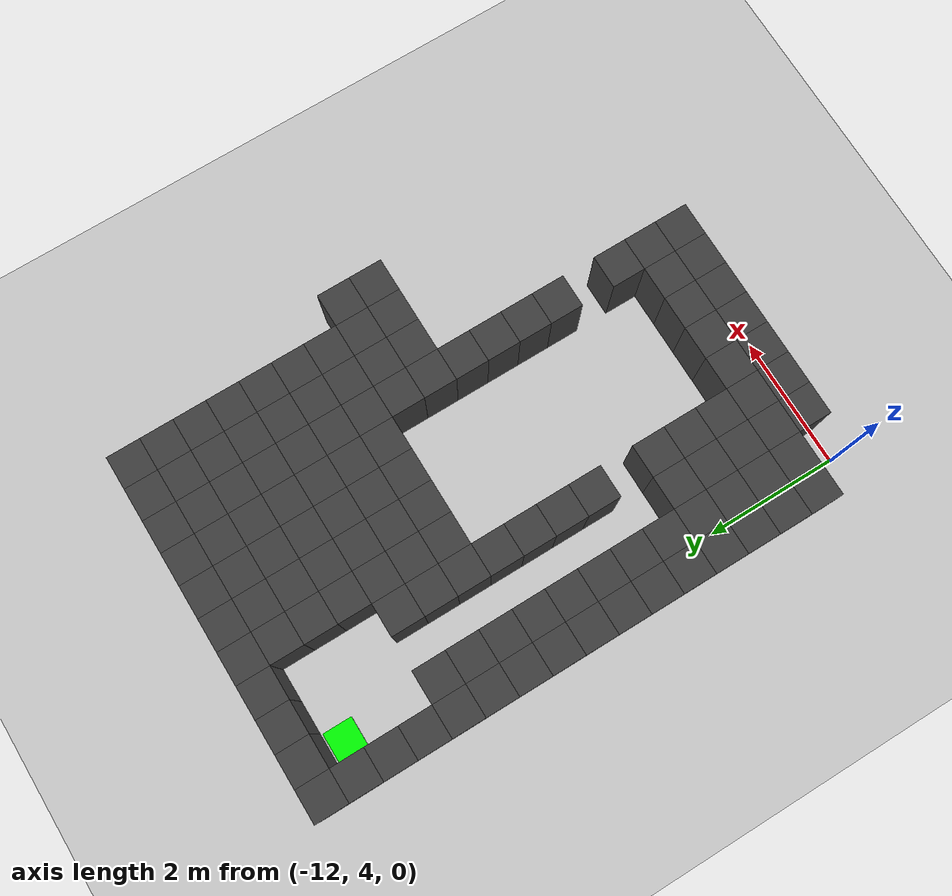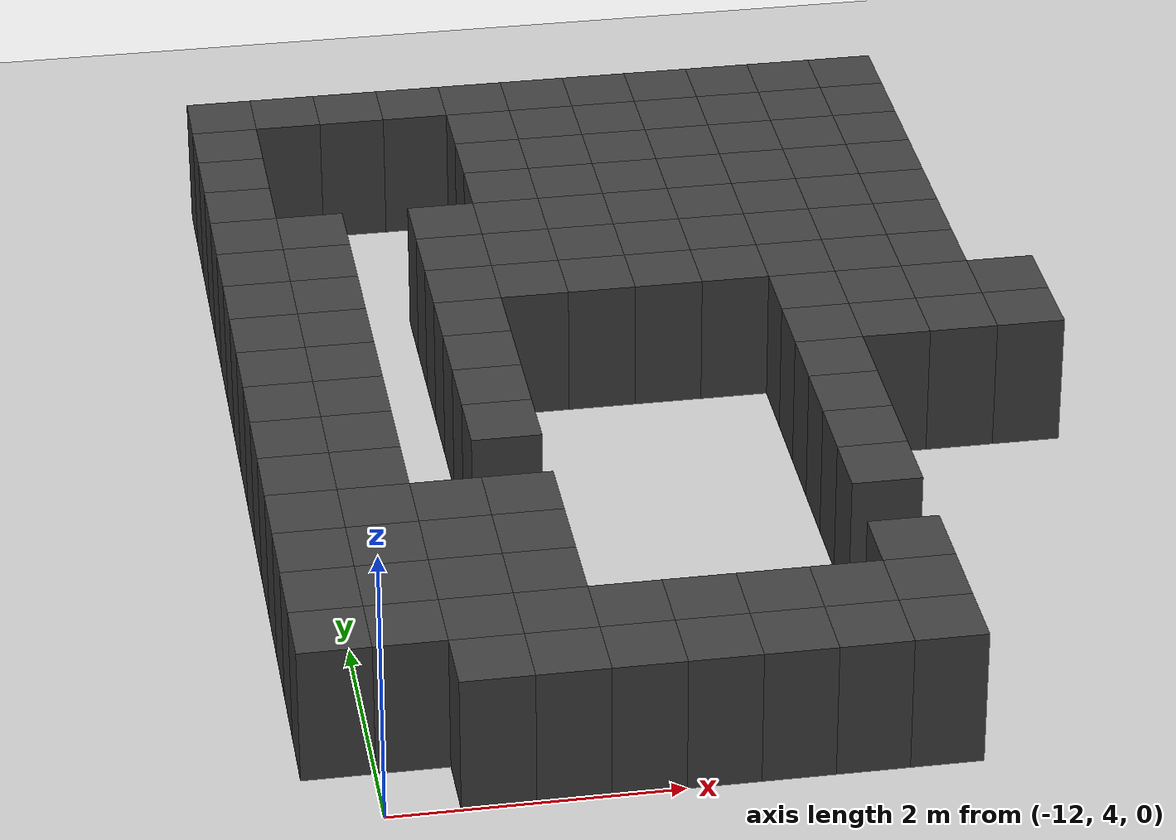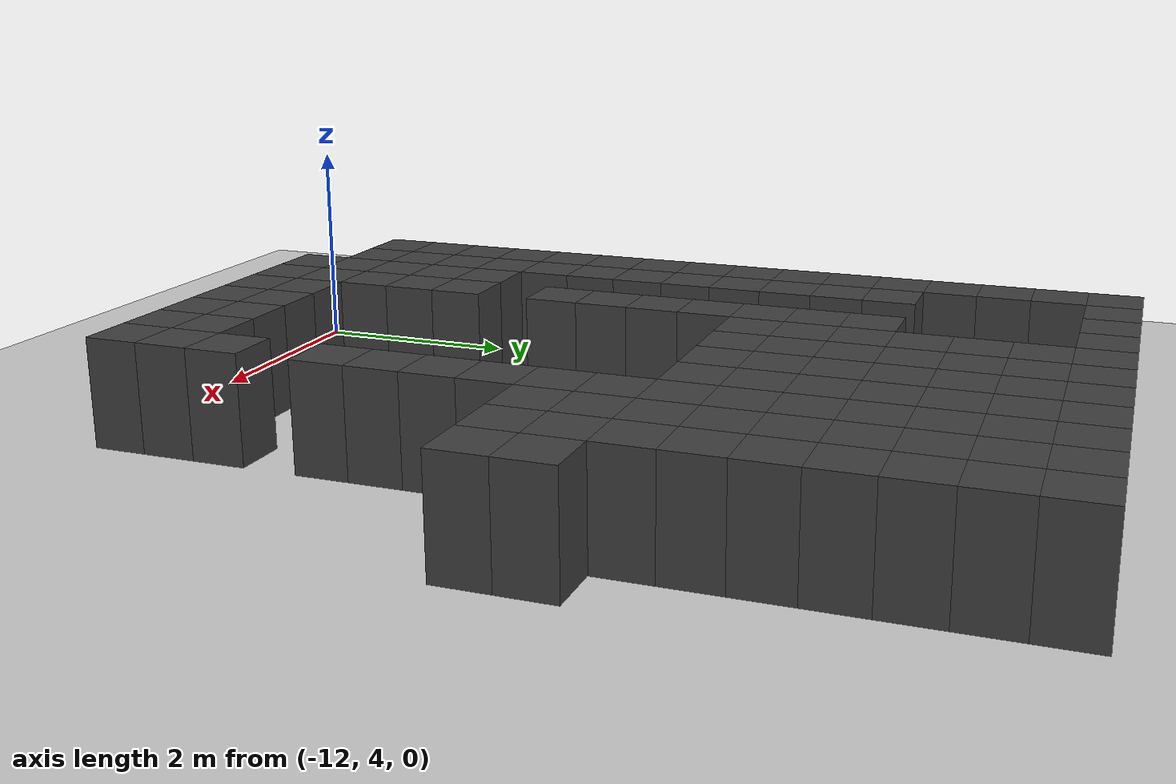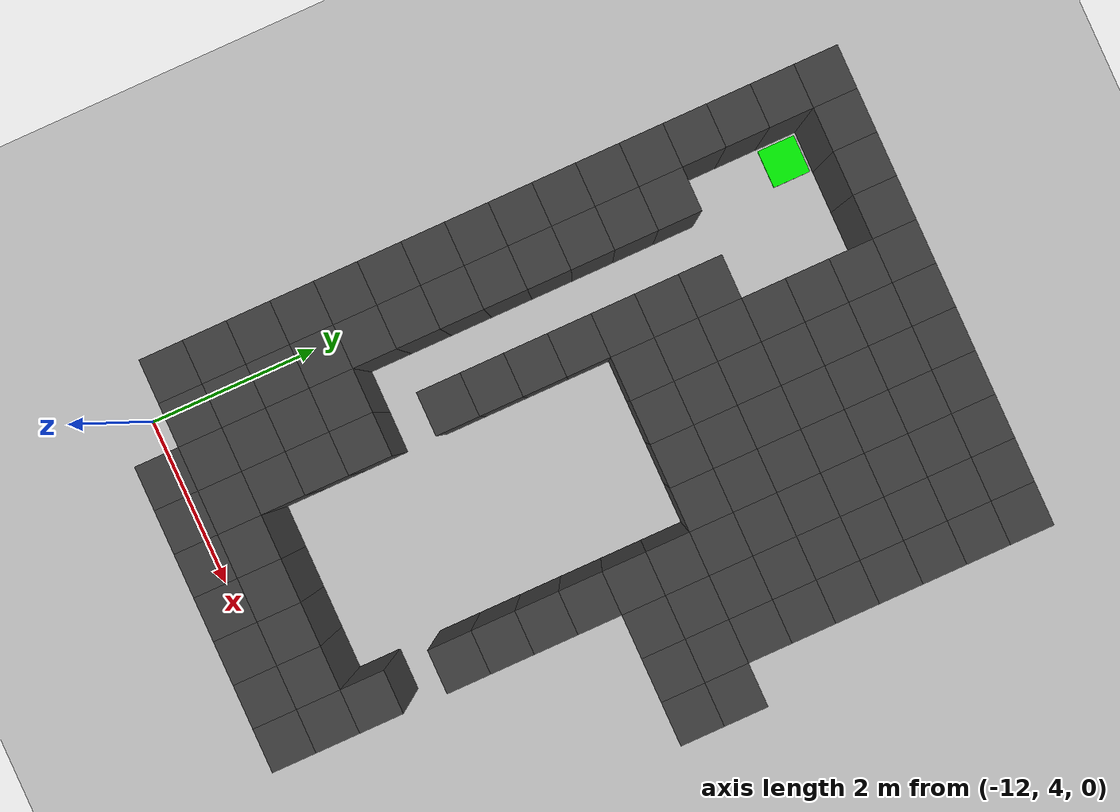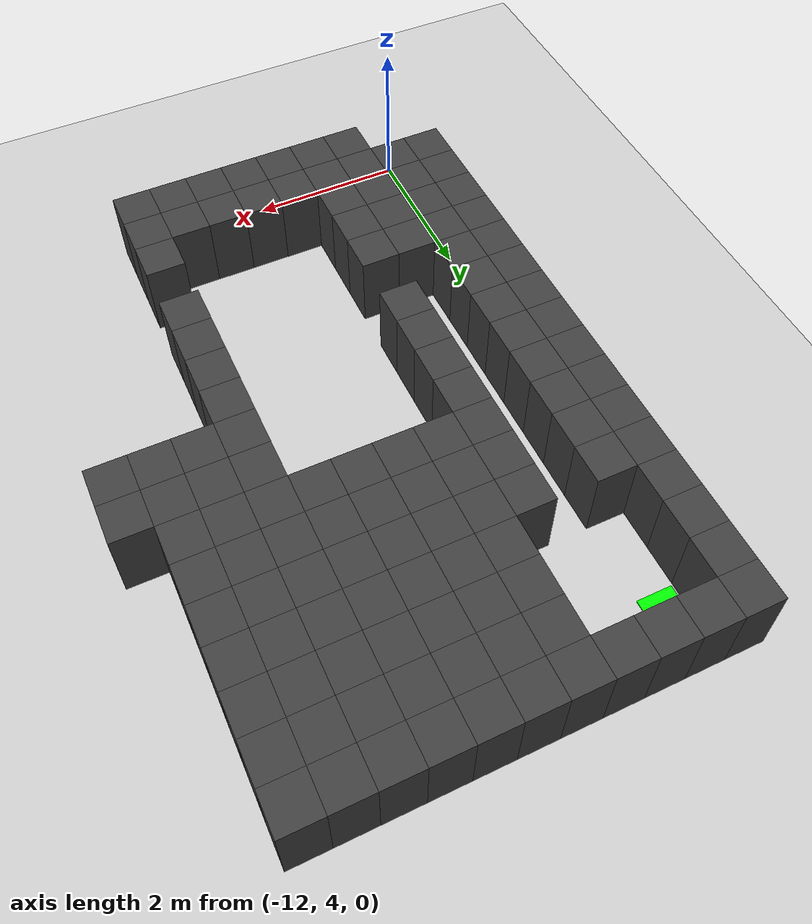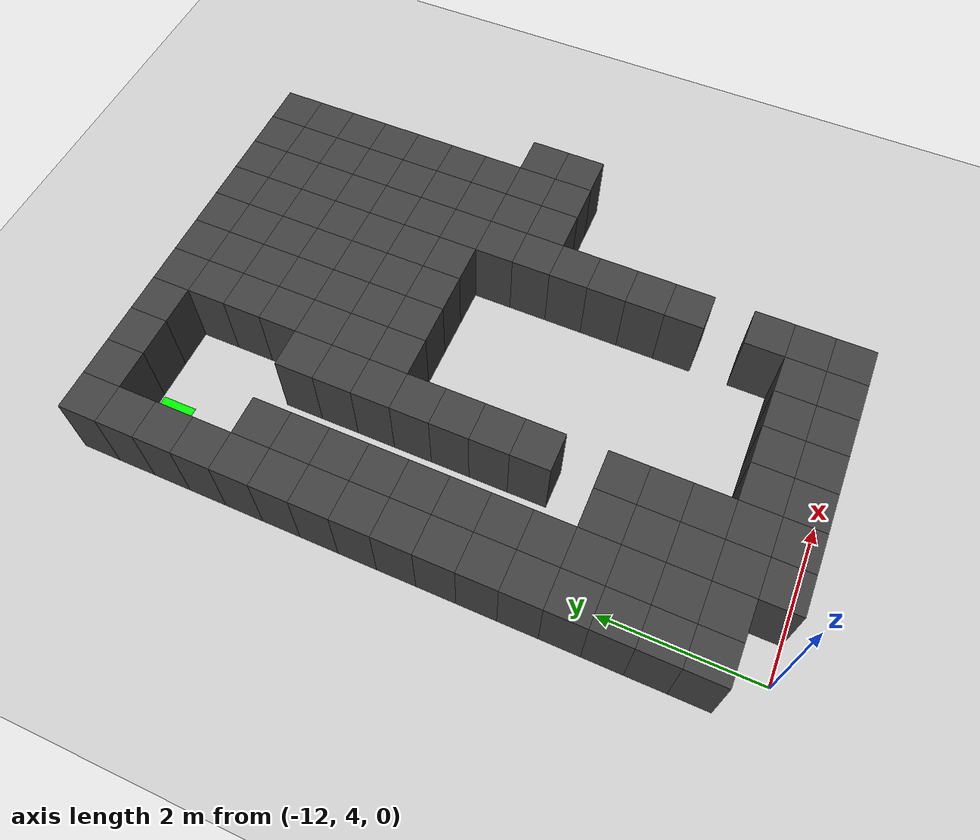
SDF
<sdf version="1.7">
 <world name="map_14706">
  <model name="ground_plane">
   <static>true</static>
   <link name="link">
    <collision name="collision">
     <geometry><plane><normal>0 0 1</normal><size>200 200</size></plane></geometry>
    </collision>
    <visual name="visual">
     <geometry><plane><normal>0 0 1</normal><size>200 200</size></plane></geometry>
     <material><ambient>0.8 0.8 0.8 1</ambient><diffuse>0.8 0.8 0.8 1</diffuse></material>
    </visual>
   </link>
  </model>
  <model name="maze_environment">
   <static>true</static>
   <link name="wall_0">
    <pose>-12.250 12.250 0.500 0 0 0</pose>
    <collision name="col"><geometry><box><size>0.5 0.5 1.0</size></box></geometry></collision>
    <visual name="vis">
     <geometry><box><size>0.5 0.5 1.0</size></box></geometry>
     <material><ambient>0.15 0.15 0.15 1</ambient><diffuse>0.25 0.25 0.25 1</diffuse></material>
    </visual>
   </link>
   <link name="wall_1">
    <pose>-11.750 12.250 0.500 0 0 0</pose>
    <collision name="col"><geometry><box><size>0.5 0.5 1.0</size></box></geometry></collision>
    <visual name="vis">
     <geometry><box><size>0.5 0.5 1.0</size></box></geometry>
     <material><ambient>0.15 0.15 0.15 1</ambient><diffuse>0.25 0.25 0.25 1</diffuse></material>
    </visual>
   </link>
   <link name="wall_2">
    <pose>-11.250 12.250 0.500 0 0 0</pose>
    <collision name="col"><geometry><box><size>0.5 0.5 1.0</size></box></geometry></collision>
    <visual name="vis">
     <geometry><box><size>0.5 0.5 1.0</size></box></geometry>
     <material><ambient>0.15 0.15 0.15 1</ambient><diffuse>0.25 0.25 0.25 1</diffuse></material>
    </visual>
   </link>
   <link name="wall_3">
    <pose>-10.750 12.250 0.500 0 0 0</pose>
    <collision name="col"><geometry><box><size>0.5 0.5 1.0</size></box></geometry></collision>
    <visual name="vis">
     <geometry><box><size>0.5 0.5 1.0</size></box></geometry>
     <material><ambient>0.15 0.15 0.15 1</ambient><diffuse>0.25 0.25 0.25 1</diffuse></material>
    </visual>
   </link>
   <link name="wall_4">
    <pose>-10.250 12.250 0.500 0 0 0</pose>
    <collision name="col"><geometry><box><size>0.5 0.5 1.0</size></box></geometry></collision>
    <visual name="vis">
     <geometry><box><size>0.5 0.5 1.0</size></box></geometry>
     <material><ambient>0.15 0.15 0.15 1</ambient><diffuse>0.25 0.25 0.25 1</diffuse></material>
    </visual>
   </link>
   <link name="wall_5">
    <pose>-9.750 12.250 0.500 0 0 0</pose>
    <collision name="col"><geometry><box><size>0.5 0.5 1.0</size></box></geometry></collision>
    <visual name="vis">
     <geometry><box><size>0.5 0.5 1.0</size></box></geometry>
     <material><ambient>0.15 0.15 0.15 1</ambient><diffuse>0.25 0.25 0.25 1</diffuse></material>
    </visual>
   </link>
   <link name="wall_6">
    <pose>-9.250 12.250 0.500 0 0 0</pose>
    <collision name="col"><geometry><box><size>0.5 0.5 1.0</size></box></geometry></collision>
    <visual name="vis">
     <geometry><box><size>0.5 0.5 1.0</size></box></geometry>
     <material><ambient>0.15 0.15 0.15 1</ambient><diffuse>0.25 0.25 0.25 1</diffuse></material>
    </visual>
   </link>
   <link name="wall_7">
    <pose>-8.750 12.250 0.500 0 0 0</pose>
    <collision name="col"><geometry><box><size>0.5 0.5 1.0</size></box></geometry></collision>
    <visual name="vis">
     <geometry><box><size>0.5 0.5 1.0</size></box></geometry>
     <material><ambient>0.15 0.15 0.15 1</ambient><diffuse>0.25 0.25 0.25 1</diffuse></material>
    </visual>
   </link>
   <link name="wall_8">
    <pose>-8.250 12.250 0.500 0 0 0</pose>
    <collision name="col"><geometry><box><size>0.5 0.5 1.0</size></box></geometry></collision>
    <visual name="vis">
     <geometry><box><size>0.5 0.5 1.0</size></box></geometry>
     <material><ambient>0.15 0.15 0.15 1</ambient><diffuse>0.25 0.25 0.25 1</diffuse></material>
    </visual>
   </link>
   <link name="wall_9">
    <pose>-7.750 12.250 0.500 0 0 0</pose>
    <collision name="col"><geometry><box><size>0.5 0.5 1.0</size></box></geometry></collision>
    <visual name="vis">
     <geometry><box><size>0.5 0.5 1.0</size></box></geometry>
     <material><ambient>0.15 0.15 0.15 1</ambient><diffuse>0.25 0.25 0.25 1</diffuse></material>
    </visual>
   </link>
   <link name="wall_10">
    <pose>-7.250 12.250 0.500 0 0 0</pose>
    <collision name="col"><geometry><box><size>0.5 0.5 1.0</size></box></geometry></collision>
    <visual name="vis">
     <geometry><box><size>0.5 0.5 1.0</size></box></geometry>
     <material><ambient>0.15 0.15 0.15 1</ambient><diffuse>0.25 0.25 0.25 1</diffuse></material>
    </visual>
   </link>
   <link name="wall_50">
    <pose>-12.250 11.750 0.500 0 0 0</pose>
    <collision name="col"><geometry><box><size>0.5 0.5 1.0</size></box></geometry></collision>
    <visual name="vis">
     <geometry><box><size>0.5 0.5 1.0</size></box></geometry>
     <material><ambient>0.15 0.15 0.15 1</ambient><diffuse>0.25 0.25 0.25 1</diffuse></material>
    </visual>
   </link>
   <link name="wall_51">
    <pose>-10.250 11.750 0.500 0 0 0</pose>
    <collision name="col"><geometry><box><size>0.5 0.5 1.0</size></box></geometry></collision>
    <visual name="vis">
     <geometry><box><size>0.5 0.5 1.0</size></box></geometry>
     <material><ambient>0.15 0.15 0.15 1</ambient><diffuse>0.25 0.25 0.25 1</diffuse></material>
    </visual>
   </link>
   <link name="wall_52">
    <pose>-9.750 11.750 0.500 0 0 0</pose>
    <collision name="col"><geometry><box><size>0.5 0.5 1.0</size></box></geometry></collision>
    <visual name="vis">
     <geometry><box><size>0.5 0.5 1.0</size></box></geometry>
     <material><ambient>0.15 0.15 0.15 1</ambient><diffuse>0.25 0.25 0.25 1</diffuse></material>
    </visual>
   </link>
   <link name="wall_53">
    <pose>-9.250 11.750 0.500 0 0 0</pose>
    <collision name="col"><geometry><box><size>0.5 0.5 1.0</size></box></geometry></collision>
    <visual name="vis">
     <geometry><box><size>0.5 0.5 1.0</size></box></geometry>
     <material><ambient>0.15 0.15 0.15 1</ambient><diffuse>0.25 0.25 0.25 1</diffuse></material>
    </visual>
   </link>
   <link name="wall_54">
    <pose>-8.750 11.750 0.500 0 0 0</pose>
    <collision name="col"><geometry><box><size>0.5 0.5 1.0</size></box></geometry></collision>
    <visual name="vis">
     <geometry><box><size>0.5 0.5 1.0</size></box></geometry>
     <material><ambient>0.15 0.15 0.15 1</ambient><diffuse>0.25 0.25 0.25 1</diffuse></material>
    </visual>
   </link>
   <link name="wall_55">
    <pose>-8.250 11.750 0.500 0 0 0</pose>
    <collision name="col"><geometry><box><size>0.5 0.5 1.0</size></box></geometry></collision>
    <visual name="vis">
     <geometry><box><size>0.5 0.5 1.0</size></box></geometry>
     <material><ambient>0.15 0.15 0.15 1</ambient><diffuse>0.25 0.25 0.25 1</diffuse></material>
    </visual>
   </link>
   <link name="wall_56">
    <pose>-7.750 11.750 0.500 0 0 0</pose>
    <collision name="col"><geometry><box><size>0.5 0.5 1.0</size></box></geometry></collision>
    <visual name="vis">
     <geometry><box><size>0.5 0.5 1.0</size></box></geometry>
     <material><ambient>0.15 0.15 0.15 1</ambient><diffuse>0.25 0.25 0.25 1</diffuse></material>
    </visual>
   </link>
   <link name="wall_57">
    <pose>-7.250 11.750 0.500 0 0 0</pose>
    <collision name="col"><geometry><box><size>0.5 0.5 1.0</size></box></geometry></collision>
    <visual name="vis">
     <geometry><box><size>0.5 0.5 1.0</size></box></geometry>
     <material><ambient>0.15 0.15 0.15 1</ambient><diffuse>0.25 0.25 0.25 1</diffuse></material>
    </visual>
   </link>
   <link name="wall_89">
    <pose>-12.250 11.250 0.500 0 0 0</pose>
    <collision name="col"><geometry><box><size>0.5 0.5 1.0</size></box></geometry></collision>
    <visual name="vis">
     <geometry><box><size>0.5 0.5 1.0</size></box></geometry>
     <material><ambient>0.15 0.15 0.15 1</ambient><diffuse>0.25 0.25 0.25 1</diffuse></material>
    </visual>
   </link>
   <link name="wall_90">
    <pose>-10.250 11.250 0.500 0 0 0</pose>
    <collision name="col"><geometry><box><size>0.5 0.5 1.0</size></box></geometry></collision>
    <visual name="vis">
     <geometry><box><size>0.5 0.5 1.0</size></box></geometry>
     <material><ambient>0.15 0.15 0.15 1</ambient><diffuse>0.25 0.25 0.25 1</diffuse></material>
    </visual>
   </link>
   <link name="wall_91">
    <pose>-9.750 11.250 0.500 0 0 0</pose>
    <collision name="col"><geometry><box><size>0.5 0.5 1.0</size></box></geometry></collision>
    <visual name="vis">
     <geometry><box><size>0.5 0.5 1.0</size></box></geometry>
     <material><ambient>0.15 0.15 0.15 1</ambient><diffuse>0.25 0.25 0.25 1</diffuse></material>
    </visual>
   </link>
   <link name="wall_92">
    <pose>-9.250 11.250 0.500 0 0 0</pose>
    <collision name="col"><geometry><box><size>0.5 0.5 1.0</size></box></geometry></collision>
    <visual name="vis">
     <geometry><box><size>0.5 0.5 1.0</size></box></geometry>
     <material><ambient>0.15 0.15 0.15 1</ambient><diffuse>0.25 0.25 0.25 1</diffuse></material>
    </visual>
   </link>
   <link name="wall_93">
    <pose>-8.750 11.250 0.500 0 0 0</pose>
    <collision name="col"><geometry><box><size>0.5 0.5 1.0</size></box></geometry></collision>
    <visual name="vis">
     <geometry><box><size>0.5 0.5 1.0</size></box></geometry>
     <material><ambient>0.15 0.15 0.15 1</ambient><diffuse>0.25 0.25 0.25 1</diffuse></material>
    </visual>
   </link>
   <link name="wall_94">
    <pose>-8.250 11.250 0.500 0 0 0</pose>
    <collision name="col"><geometry><box><size>0.5 0.5 1.0</size></box></geometry></collision>
    <visual name="vis">
     <geometry><box><size>0.5 0.5 1.0</size></box></geometry>
     <material><ambient>0.15 0.15 0.15 1</ambient><diffuse>0.25 0.25 0.25 1</diffuse></material>
    </visual>
   </link>
   <link name="wall_95">
    <pose>-7.750 11.250 0.500 0 0 0</pose>
    <collision name="col"><geometry><box><size>0.5 0.5 1.0</size></box></geometry></collision>
    <visual name="vis">
     <geometry><box><size>0.5 0.5 1.0</size></box></geometry>
     <material><ambient>0.15 0.15 0.15 1</ambient><diffuse>0.25 0.25 0.25 1</diffuse></material>
    </visual>
   </link>
   <link name="wall_96">
    <pose>-7.250 11.250 0.500 0 0 0</pose>
    <collision name="col"><geometry><box><size>0.5 0.5 1.0</size></box></geometry></collision>
    <visual name="vis">
     <geometry><box><size>0.5 0.5 1.0</size></box></geometry>
     <material><ambient>0.15 0.15 0.15 1</ambient><diffuse>0.25 0.25 0.25 1</diffuse></material>
    </visual>
   </link>
   <link name="wall_128">
    <pose>-12.250 10.750 0.500 0 0 0</pose>
    <collision name="col"><geometry><box><size>0.5 0.5 1.0</size></box></geometry></collision>
    <visual name="vis">
     <geometry><box><size>0.5 0.5 1.0</size></box></geometry>
     <material><ambient>0.15 0.15 0.15 1</ambient><diffuse>0.25 0.25 0.25 1</diffuse></material>
    </visual>
   </link>
   <link name="wall_129">
    <pose>-10.250 10.750 0.500 0 0 0</pose>
    <collision name="col"><geometry><box><size>0.5 0.5 1.0</size></box></geometry></collision>
    <visual name="vis">
     <geometry><box><size>0.5 0.5 1.0</size></box></geometry>
     <material><ambient>0.15 0.15 0.15 1</ambient><diffuse>0.25 0.25 0.25 1</diffuse></material>
    </visual>
   </link>
   <link name="wall_130">
    <pose>-9.750 10.750 0.500 0 0 0</pose>
    <collision name="col"><geometry><box><size>0.5 0.5 1.0</size></box></geometry></collision>
    <visual name="vis">
     <geometry><box><size>0.5 0.5 1.0</size></box></geometry>
     <material><ambient>0.15 0.15 0.15 1</ambient><diffuse>0.25 0.25 0.25 1</diffuse></material>
    </visual>
   </link>
   <link name="wall_131">
    <pose>-9.250 10.750 0.500 0 0 0</pose>
    <collision name="col"><geometry><box><size>0.5 0.5 1.0</size></box></geometry></collision>
    <visual name="vis">
     <geometry><box><size>0.5 0.5 1.0</size></box></geometry>
     <material><ambient>0.15 0.15 0.15 1</ambient><diffuse>0.25 0.25 0.25 1</diffuse></material>
    </visual>
   </link>
   <link name="wall_132">
    <pose>-8.750 10.750 0.500 0 0 0</pose>
    <collision name="col"><geometry><box><size>0.5 0.5 1.0</size></box></geometry></collision>
    <visual name="vis">
     <geometry><box><size>0.5 0.5 1.0</size></box></geometry>
     <material><ambient>0.15 0.15 0.15 1</ambient><diffuse>0.25 0.25 0.25 1</diffuse></material>
    </visual>
   </link>
   <link name="wall_133">
    <pose>-8.250 10.750 0.500 0 0 0</pose>
    <collision name="col"><geometry><box><size>0.5 0.5 1.0</size></box></geometry></collision>
    <visual name="vis">
     <geometry><box><size>0.5 0.5 1.0</size></box></geometry>
     <material><ambient>0.15 0.15 0.15 1</ambient><diffuse>0.25 0.25 0.25 1</diffuse></material>
    </visual>
   </link>
   <link name="wall_134">
    <pose>-7.750 10.750 0.500 0 0 0</pose>
    <collision name="col"><geometry><box><size>0.5 0.5 1.0</size></box></geometry></collision>
    <visual name="vis">
     <geometry><box><size>0.5 0.5 1.0</size></box></geometry>
     <material><ambient>0.15 0.15 0.15 1</ambient><diffuse>0.25 0.25 0.25 1</diffuse></material>
    </visual>
   </link>
   <link name="wall_135">
    <pose>-7.250 10.750 0.500 0 0 0</pose>
    <collision name="col"><geometry><box><size>0.5 0.5 1.0</size></box></geometry></collision>
    <visual name="vis">
     <geometry><box><size>0.5 0.5 1.0</size></box></geometry>
     <material><ambient>0.15 0.15 0.15 1</ambient><diffuse>0.25 0.25 0.25 1</diffuse></material>
    </visual>
   </link>
   <link name="wall_157">
    <pose>-12.250 10.250 0.500 0 0 0</pose>
    <collision name="col"><geometry><box><size>0.5 0.5 1.0</size></box></geometry></collision>
    <visual name="vis">
     <geometry><box><size>0.5 0.5 1.0</size></box></geometry>
     <material><ambient>0.15 0.15 0.15 1</ambient><diffuse>0.25 0.25 0.25 1</diffuse></material>
    </visual>
   </link>
   <link name="wall_158">
    <pose>-11.750 10.250 0.500 0 0 0</pose>
    <collision name="col"><geometry><box><size>0.5 0.5 1.0</size></box></geometry></collision>
    <visual name="vis">
     <geometry><box><size>0.5 0.5 1.0</size></box></geometry>
     <material><ambient>0.15 0.15 0.15 1</ambient><diffuse>0.25 0.25 0.25 1</diffuse></material>
    </visual>
   </link>
   <link name="wall_159">
    <pose>-10.750 10.250 0.500 0 0 0</pose>
    <collision name="col"><geometry><box><size>0.5 0.5 1.0</size></box></geometry></collision>
    <visual name="vis">
     <geometry><box><size>0.5 0.5 1.0</size></box></geometry>
     <material><ambient>0.15 0.15 0.15 1</ambient><diffuse>0.25 0.25 0.25 1</diffuse></material>
    </visual>
   </link>
   <link name="wall_160">
    <pose>-10.250 10.250 0.500 0 0 0</pose>
    <collision name="col"><geometry><box><size>0.5 0.5 1.0</size></box></geometry></collision>
    <visual name="vis">
     <geometry><box><size>0.5 0.5 1.0</size></box></geometry>
     <material><ambient>0.15 0.15 0.15 1</ambient><diffuse>0.25 0.25 0.25 1</diffuse></material>
    </visual>
   </link>
   <link name="wall_161">
    <pose>-9.750 10.250 0.500 0 0 0</pose>
    <collision name="col"><geometry><box><size>0.5 0.5 1.0</size></box></geometry></collision>
    <visual name="vis">
     <geometry><box><size>0.5 0.5 1.0</size></box></geometry>
     <material><ambient>0.15 0.15 0.15 1</ambient><diffuse>0.25 0.25 0.25 1</diffuse></material>
    </visual>
   </link>
   <link name="wall_162">
    <pose>-9.250 10.250 0.500 0 0 0</pose>
    <collision name="col"><geometry><box><size>0.5 0.5 1.0</size></box></geometry></collision>
    <visual name="vis">
     <geometry><box><size>0.5 0.5 1.0</size></box></geometry>
     <material><ambient>0.15 0.15 0.15 1</ambient><diffuse>0.25 0.25 0.25 1</diffuse></material>
    </visual>
   </link>
   <link name="wall_163">
    <pose>-8.750 10.250 0.500 0 0 0</pose>
    <collision name="col"><geometry><box><size>0.5 0.5 1.0</size></box></geometry></collision>
    <visual name="vis">
     <geometry><box><size>0.5 0.5 1.0</size></box></geometry>
     <material><ambient>0.15 0.15 0.15 1</ambient><diffuse>0.25 0.25 0.25 1</diffuse></material>
    </visual>
   </link>
   <link name="wall_164">
    <pose>-8.250 10.250 0.500 0 0 0</pose>
    <collision name="col"><geometry><box><size>0.5 0.5 1.0</size></box></geometry></collision>
    <visual name="vis">
     <geometry><box><size>0.5 0.5 1.0</size></box></geometry>
     <material><ambient>0.15 0.15 0.15 1</ambient><diffuse>0.25 0.25 0.25 1</diffuse></material>
    </visual>
   </link>
   <link name="wall_165">
    <pose>-7.750 10.250 0.500 0 0 0</pose>
    <collision name="col"><geometry><box><size>0.5 0.5 1.0</size></box></geometry></collision>
    <visual name="vis">
     <geometry><box><size>0.5 0.5 1.0</size></box></geometry>
     <material><ambient>0.15 0.15 0.15 1</ambient><diffuse>0.25 0.25 0.25 1</diffuse></material>
    </visual>
   </link>
   <link name="wall_166">
    <pose>-7.250 10.250 0.500 0 0 0</pose>
    <collision name="col"><geometry><box><size>0.5 0.5 1.0</size></box></geometry></collision>
    <visual name="vis">
     <geometry><box><size>0.5 0.5 1.0</size></box></geometry>
     <material><ambient>0.15 0.15 0.15 1</ambient><diffuse>0.25 0.25 0.25 1</diffuse></material>
    </visual>
   </link>
   <link name="wall_185">
    <pose>-12.250 9.750 0.500 0 0 0</pose>
    <collision name="col"><geometry><box><size>0.5 0.5 1.0</size></box></geometry></collision>
    <visual name="vis">
     <geometry><box><size>0.5 0.5 1.0</size></box></geometry>
     <material><ambient>0.15 0.15 0.15 1</ambient><diffuse>0.25 0.25 0.25 1</diffuse></material>
    </visual>
   </link>
   <link name="wall_186">
    <pose>-11.750 9.750 0.500 0 0 0</pose>
    <collision name="col"><geometry><box><size>0.5 0.5 1.0</size></box></geometry></collision>
    <visual name="vis">
     <geometry><box><size>0.5 0.5 1.0</size></box></geometry>
     <material><ambient>0.15 0.15 0.15 1</ambient><diffuse>0.25 0.25 0.25 1</diffuse></material>
    </visual>
   </link>
   <link name="wall_187">
    <pose>-10.750 9.750 0.500 0 0 0</pose>
    <collision name="col"><geometry><box><size>0.5 0.5 1.0</size></box></geometry></collision>
    <visual name="vis">
     <geometry><box><size>0.5 0.5 1.0</size></box></geometry>
     <material><ambient>0.15 0.15 0.15 1</ambient><diffuse>0.25 0.25 0.25 1</diffuse></material>
    </visual>
   </link>
   <link name="wall_188">
    <pose>-10.250 9.750 0.500 0 0 0</pose>
    <collision name="col"><geometry><box><size>0.5 0.5 1.0</size></box></geometry></collision>
    <visual name="vis">
     <geometry><box><size>0.5 0.5 1.0</size></box></geometry>
     <material><ambient>0.15 0.15 0.15 1</ambient><diffuse>0.25 0.25 0.25 1</diffuse></material>
    </visual>
   </link>
   <link name="wall_189">
    <pose>-9.750 9.750 0.500 0 0 0</pose>
    <collision name="col"><geometry><box><size>0.5 0.5 1.0</size></box></geometry></collision>
    <visual name="vis">
     <geometry><box><size>0.5 0.5 1.0</size></box></geometry>
     <material><ambient>0.15 0.15 0.15 1</ambient><diffuse>0.25 0.25 0.25 1</diffuse></material>
    </visual>
   </link>
   <link name="wall_190">
    <pose>-9.250 9.750 0.500 0 0 0</pose>
    <collision name="col"><geometry><box><size>0.5 0.5 1.0</size></box></geometry></collision>
    <visual name="vis">
     <geometry><box><size>0.5 0.5 1.0</size></box></geometry>
     <material><ambient>0.15 0.15 0.15 1</ambient><diffuse>0.25 0.25 0.25 1</diffuse></material>
    </visual>
   </link>
   <link name="wall_191">
    <pose>-8.750 9.750 0.500 0 0 0</pose>
    <collision name="col"><geometry><box><size>0.5 0.5 1.0</size></box></geometry></collision>
    <visual name="vis">
     <geometry><box><size>0.5 0.5 1.0</size></box></geometry>
     <material><ambient>0.15 0.15 0.15 1</ambient><diffuse>0.25 0.25 0.25 1</diffuse></material>
    </visual>
   </link>
   <link name="wall_192">
    <pose>-8.250 9.750 0.500 0 0 0</pose>
    <collision name="col"><geometry><box><size>0.5 0.5 1.0</size></box></geometry></collision>
    <visual name="vis">
     <geometry><box><size>0.5 0.5 1.0</size></box></geometry>
     <material><ambient>0.15 0.15 0.15 1</ambient><diffuse>0.25 0.25 0.25 1</diffuse></material>
    </visual>
   </link>
   <link name="wall_193">
    <pose>-7.750 9.750 0.500 0 0 0</pose>
    <collision name="col"><geometry><box><size>0.5 0.5 1.0</size></box></geometry></collision>
    <visual name="vis">
     <geometry><box><size>0.5 0.5 1.0</size></box></geometry>
     <material><ambient>0.15 0.15 0.15 1</ambient><diffuse>0.25 0.25 0.25 1</diffuse></material>
    </visual>
   </link>
   <link name="wall_194">
    <pose>-7.250 9.750 0.500 0 0 0</pose>
    <collision name="col"><geometry><box><size>0.5 0.5 1.0</size></box></geometry></collision>
    <visual name="vis">
     <geometry><box><size>0.5 0.5 1.0</size></box></geometry>
     <material><ambient>0.15 0.15 0.15 1</ambient><diffuse>0.25 0.25 0.25 1</diffuse></material>
    </visual>
   </link>
   <link name="wall_210">
    <pose>-12.250 9.250 0.500 0 0 0</pose>
    <collision name="col"><geometry><box><size>0.5 0.5 1.0</size></box></geometry></collision>
    <visual name="vis">
     <geometry><box><size>0.5 0.5 1.0</size></box></geometry>
     <material><ambient>0.15 0.15 0.15 1</ambient><diffuse>0.25 0.25 0.25 1</diffuse></material>
    </visual>
   </link>
   <link name="wall_211">
    <pose>-11.750 9.250 0.500 0 0 0</pose>
    <collision name="col"><geometry><box><size>0.5 0.5 1.0</size></box></geometry></collision>
    <visual name="vis">
     <geometry><box><size>0.5 0.5 1.0</size></box></geometry>
     <material><ambient>0.15 0.15 0.15 1</ambient><diffuse>0.25 0.25 0.25 1</diffuse></material>
    </visual>
   </link>
   <link name="wall_212">
    <pose>-10.750 9.250 0.500 0 0 0</pose>
    <collision name="col"><geometry><box><size>0.5 0.5 1.0</size></box></geometry></collision>
    <visual name="vis">
     <geometry><box><size>0.5 0.5 1.0</size></box></geometry>
     <material><ambient>0.15 0.15 0.15 1</ambient><diffuse>0.25 0.25 0.25 1</diffuse></material>
    </visual>
   </link>
   <link name="wall_213">
    <pose>-10.250 9.250 0.500 0 0 0</pose>
    <collision name="col"><geometry><box><size>0.5 0.5 1.0</size></box></geometry></collision>
    <visual name="vis">
     <geometry><box><size>0.5 0.5 1.0</size></box></geometry>
     <material><ambient>0.15 0.15 0.15 1</ambient><diffuse>0.25 0.25 0.25 1</diffuse></material>
    </visual>
   </link>
   <link name="wall_214">
    <pose>-9.750 9.250 0.500 0 0 0</pose>
    <collision name="col"><geometry><box><size>0.5 0.5 1.0</size></box></geometry></collision>
    <visual name="vis">
     <geometry><box><size>0.5 0.5 1.0</size></box></geometry>
     <material><ambient>0.15 0.15 0.15 1</ambient><diffuse>0.25 0.25 0.25 1</diffuse></material>
    </visual>
   </link>
   <link name="wall_215">
    <pose>-9.250 9.250 0.500 0 0 0</pose>
    <collision name="col"><geometry><box><size>0.5 0.5 1.0</size></box></geometry></collision>
    <visual name="vis">
     <geometry><box><size>0.5 0.5 1.0</size></box></geometry>
     <material><ambient>0.15 0.15 0.15 1</ambient><diffuse>0.25 0.25 0.25 1</diffuse></material>
    </visual>
   </link>
   <link name="wall_216">
    <pose>-8.750 9.250 0.500 0 0 0</pose>
    <collision name="col"><geometry><box><size>0.5 0.5 1.0</size></box></geometry></collision>
    <visual name="vis">
     <geometry><box><size>0.5 0.5 1.0</size></box></geometry>
     <material><ambient>0.15 0.15 0.15 1</ambient><diffuse>0.25 0.25 0.25 1</diffuse></material>
    </visual>
   </link>
   <link name="wall_217">
    <pose>-8.250 9.250 0.500 0 0 0</pose>
    <collision name="col"><geometry><box><size>0.5 0.5 1.0</size></box></geometry></collision>
    <visual name="vis">
     <geometry><box><size>0.5 0.5 1.0</size></box></geometry>
     <material><ambient>0.15 0.15 0.15 1</ambient><diffuse>0.25 0.25 0.25 1</diffuse></material>
    </visual>
   </link>
   <link name="wall_218">
    <pose>-7.750 9.250 0.500 0 0 0</pose>
    <collision name="col"><geometry><box><size>0.5 0.5 1.0</size></box></geometry></collision>
    <visual name="vis">
     <geometry><box><size>0.5 0.5 1.0</size></box></geometry>
     <material><ambient>0.15 0.15 0.15 1</ambient><diffuse>0.25 0.25 0.25 1</diffuse></material>
    </visual>
   </link>
   <link name="wall_219">
    <pose>-7.250 9.250 0.500 0 0 0</pose>
    <collision name="col"><geometry><box><size>0.5 0.5 1.0</size></box></geometry></collision>
    <visual name="vis">
     <geometry><box><size>0.5 0.5 1.0</size></box></geometry>
     <material><ambient>0.15 0.15 0.15 1</ambient><diffuse>0.25 0.25 0.25 1</diffuse></material>
    </visual>
   </link>
   <link name="wall_236">
    <pose>-12.250 8.750 0.500 0 0 0</pose>
    <collision name="col"><geometry><box><size>0.5 0.5 1.0</size></box></geometry></collision>
    <visual name="vis">
     <geometry><box><size>0.5 0.5 1.0</size></box></geometry>
     <material><ambient>0.15 0.15 0.15 1</ambient><diffuse>0.25 0.25 0.25 1</diffuse></material>
    </visual>
   </link>
   <link name="wall_237">
    <pose>-11.750 8.750 0.500 0 0 0</pose>
    <collision name="col"><geometry><box><size>0.5 0.5 1.0</size></box></geometry></collision>
    <visual name="vis">
     <geometry><box><size>0.5 0.5 1.0</size></box></geometry>
     <material><ambient>0.15 0.15 0.15 1</ambient><diffuse>0.25 0.25 0.25 1</diffuse></material>
    </visual>
   </link>
   <link name="wall_238">
    <pose>-10.750 8.750 0.500 0 0 0</pose>
    <collision name="col"><geometry><box><size>0.5 0.5 1.0</size></box></geometry></collision>
    <visual name="vis">
     <geometry><box><size>0.5 0.5 1.0</size></box></geometry>
     <material><ambient>0.15 0.15 0.15 1</ambient><diffuse>0.25 0.25 0.25 1</diffuse></material>
    </visual>
   </link>
   <link name="wall_239">
    <pose>-8.250 8.750 0.500 0 0 0</pose>
    <collision name="col"><geometry><box><size>0.5 0.5 1.0</size></box></geometry></collision>
    <visual name="vis">
     <geometry><box><size>0.5 0.5 1.0</size></box></geometry>
     <material><ambient>0.15 0.15 0.15 1</ambient><diffuse>0.25 0.25 0.25 1</diffuse></material>
    </visual>
   </link>
   <link name="wall_240">
    <pose>-7.750 8.750 0.500 0 0 0</pose>
    <collision name="col"><geometry><box><size>0.5 0.5 1.0</size></box></geometry></collision>
    <visual name="vis">
     <geometry><box><size>0.5 0.5 1.0</size></box></geometry>
     <material><ambient>0.15 0.15 0.15 1</ambient><diffuse>0.25 0.25 0.25 1</diffuse></material>
    </visual>
   </link>
   <link name="wall_241">
    <pose>-7.250 8.750 0.500 0 0 0</pose>
    <collision name="col"><geometry><box><size>0.5 0.5 1.0</size></box></geometry></collision>
    <visual name="vis">
     <geometry><box><size>0.5 0.5 1.0</size></box></geometry>
     <material><ambient>0.15 0.15 0.15 1</ambient><diffuse>0.25 0.25 0.25 1</diffuse></material>
    </visual>
   </link>
   <link name="wall_242">
    <pose>-6.750 8.750 0.500 0 0 0</pose>
    <collision name="col"><geometry><box><size>0.5 0.5 1.0</size></box></geometry></collision>
    <visual name="vis">
     <geometry><box><size>0.5 0.5 1.0</size></box></geometry>
     <material><ambient>0.15 0.15 0.15 1</ambient><diffuse>0.25 0.25 0.25 1</diffuse></material>
    </visual>
   </link>
   <link name="wall_268">
    <pose>-12.250 8.250 0.500 0 0 0</pose>
    <collision name="col"><geometry><box><size>0.5 0.5 1.0</size></box></geometry></collision>
    <visual name="vis">
     <geometry><box><size>0.5 0.5 1.0</size></box></geometry>
     <material><ambient>0.15 0.15 0.15 1</ambient><diffuse>0.25 0.25 0.25 1</diffuse></material>
    </visual>
   </link>
   <link name="wall_269">
    <pose>-11.750 8.250 0.500 0 0 0</pose>
    <collision name="col"><geometry><box><size>0.5 0.5 1.0</size></box></geometry></collision>
    <visual name="vis">
     <geometry><box><size>0.5 0.5 1.0</size></box></geometry>
     <material><ambient>0.15 0.15 0.15 1</ambient><diffuse>0.25 0.25 0.25 1</diffuse></material>
    </visual>
   </link>
   <link name="wall_270">
    <pose>-10.750 8.250 0.500 0 0 0</pose>
    <collision name="col"><geometry><box><size>0.5 0.5 1.0</size></box></geometry></collision>
    <visual name="vis">
     <geometry><box><size>0.5 0.5 1.0</size></box></geometry>
     <material><ambient>0.15 0.15 0.15 1</ambient><diffuse>0.25 0.25 0.25 1</diffuse></material>
    </visual>
   </link>
   <link name="wall_271">
    <pose>-8.250 8.250 0.500 0 0 0</pose>
    <collision name="col"><geometry><box><size>0.5 0.5 1.0</size></box></geometry></collision>
    <visual name="vis">
     <geometry><box><size>0.5 0.5 1.0</size></box></geometry>
     <material><ambient>0.15 0.15 0.15 1</ambient><diffuse>0.25 0.25 0.25 1</diffuse></material>
    </visual>
   </link>
   <link name="wall_272">
    <pose>-7.750 8.250 0.500 0 0 0</pose>
    <collision name="col"><geometry><box><size>0.5 0.5 1.0</size></box></geometry></collision>
    <visual name="vis">
     <geometry><box><size>0.5 0.5 1.0</size></box></geometry>
     <material><ambient>0.15 0.15 0.15 1</ambient><diffuse>0.25 0.25 0.25 1</diffuse></material>
    </visual>
   </link>
   <link name="wall_273">
    <pose>-7.250 8.250 0.500 0 0 0</pose>
    <collision name="col"><geometry><box><size>0.5 0.5 1.0</size></box></geometry></collision>
    <visual name="vis">
     <geometry><box><size>0.5 0.5 1.0</size></box></geometry>
     <material><ambient>0.15 0.15 0.15 1</ambient><diffuse>0.25 0.25 0.25 1</diffuse></material>
    </visual>
   </link>
   <link name="wall_274">
    <pose>-6.750 8.250 0.500 0 0 0</pose>
    <collision name="col"><geometry><box><size>0.5 0.5 1.0</size></box></geometry></collision>
    <visual name="vis">
     <geometry><box><size>0.5 0.5 1.0</size></box></geometry>
     <material><ambient>0.15 0.15 0.15 1</ambient><diffuse>0.25 0.25 0.25 1</diffuse></material>
    </visual>
   </link>
   <link name="wall_297">
    <pose>-12.250 7.750 0.500 0 0 0</pose>
    <collision name="col"><geometry><box><size>0.5 0.5 1.0</size></box></geometry></collision>
    <visual name="vis">
     <geometry><box><size>0.5 0.5 1.0</size></box></geometry>
     <material><ambient>0.15 0.15 0.15 1</ambient><diffuse>0.25 0.25 0.25 1</diffuse></material>
    </visual>
   </link>
   <link name="wall_298">
    <pose>-11.750 7.750 0.500 0 0 0</pose>
    <collision name="col"><geometry><box><size>0.5 0.5 1.0</size></box></geometry></collision>
    <visual name="vis">
     <geometry><box><size>0.5 0.5 1.0</size></box></geometry>
     <material><ambient>0.15 0.15 0.15 1</ambient><diffuse>0.25 0.25 0.25 1</diffuse></material>
    </visual>
   </link>
   <link name="wall_299">
    <pose>-10.750 7.750 0.500 0 0 0</pose>
    <collision name="col"><geometry><box><size>0.5 0.5 1.0</size></box></geometry></collision>
    <visual name="vis">
     <geometry><box><size>0.5 0.5 1.0</size></box></geometry>
     <material><ambient>0.15 0.15 0.15 1</ambient><diffuse>0.25 0.25 0.25 1</diffuse></material>
    </visual>
   </link>
   <link name="wall_300">
    <pose>-8.250 7.750 0.500 0 0 0</pose>
    <collision name="col"><geometry><box><size>0.5 0.5 1.0</size></box></geometry></collision>
    <visual name="vis">
     <geometry><box><size>0.5 0.5 1.0</size></box></geometry>
     <material><ambient>0.15 0.15 0.15 1</ambient><diffuse>0.25 0.25 0.25 1</diffuse></material>
    </visual>
   </link>
   <link name="wall_321">
    <pose>-12.250 7.250 0.500 0 0 0</pose>
    <collision name="col"><geometry><box><size>0.5 0.5 1.0</size></box></geometry></collision>
    <visual name="vis">
     <geometry><box><size>0.5 0.5 1.0</size></box></geometry>
     <material><ambient>0.15 0.15 0.15 1</ambient><diffuse>0.25 0.25 0.25 1</diffuse></material>
    </visual>
   </link>
   <link name="wall_322">
    <pose>-11.750 7.250 0.500 0 0 0</pose>
    <collision name="col"><geometry><box><size>0.5 0.5 1.0</size></box></geometry></collision>
    <visual name="vis">
     <geometry><box><size>0.5 0.5 1.0</size></box></geometry>
     <material><ambient>0.15 0.15 0.15 1</ambient><diffuse>0.25 0.25 0.25 1</diffuse></material>
    </visual>
   </link>
   <link name="wall_323">
    <pose>-10.750 7.250 0.500 0 0 0</pose>
    <collision name="col"><geometry><box><size>0.5 0.5 1.0</size></box></geometry></collision>
    <visual name="vis">
     <geometry><box><size>0.5 0.5 1.0</size></box></geometry>
     <material><ambient>0.15 0.15 0.15 1</ambient><diffuse>0.25 0.25 0.25 1</diffuse></material>
    </visual>
   </link>
   <link name="wall_324">
    <pose>-8.250 7.250 0.500 0 0 0</pose>
    <collision name="col"><geometry><box><size>0.5 0.5 1.0</size></box></geometry></collision>
    <visual name="vis">
     <geometry><box><size>0.5 0.5 1.0</size></box></geometry>
     <material><ambient>0.15 0.15 0.15 1</ambient><diffuse>0.25 0.25 0.25 1</diffuse></material>
    </visual>
   </link>
   <link name="wall_345">
    <pose>-12.250 6.750 0.500 0 0 0</pose>
    <collision name="col"><geometry><box><size>0.5 0.5 1.0</size></box></geometry></collision>
    <visual name="vis">
     <geometry><box><size>0.5 0.5 1.0</size></box></geometry>
     <material><ambient>0.15 0.15 0.15 1</ambient><diffuse>0.25 0.25 0.25 1</diffuse></material>
    </visual>
   </link>
   <link name="wall_346">
    <pose>-11.750 6.750 0.500 0 0 0</pose>
    <collision name="col"><geometry><box><size>0.5 0.5 1.0</size></box></geometry></collision>
    <visual name="vis">
     <geometry><box><size>0.5 0.5 1.0</size></box></geometry>
     <material><ambient>0.15 0.15 0.15 1</ambient><diffuse>0.25 0.25 0.25 1</diffuse></material>
    </visual>
   </link>
   <link name="wall_347">
    <pose>-8.250 6.750 0.500 0 0 0</pose>
    <collision name="col"><geometry><box><size>0.5 0.5 1.0</size></box></geometry></collision>
    <visual name="vis">
     <geometry><box><size>0.5 0.5 1.0</size></box></geometry>
     <material><ambient>0.15 0.15 0.15 1</ambient><diffuse>0.25 0.25 0.25 1</diffuse></material>
    </visual>
   </link>
   <link name="wall_372">
    <pose>-12.250 6.250 0.500 0 0 0</pose>
    <collision name="col"><geometry><box><size>0.5 0.5 1.0</size></box></geometry></collision>
    <visual name="vis">
     <geometry><box><size>0.5 0.5 1.0</size></box></geometry>
     <material><ambient>0.15 0.15 0.15 1</ambient><diffuse>0.25 0.25 0.25 1</diffuse></material>
    </visual>
   </link>
   <link name="wall_373">
    <pose>-11.750 6.250 0.500 0 0 0</pose>
    <collision name="col"><geometry><box><size>0.5 0.5 1.0</size></box></geometry></collision>
    <visual name="vis">
     <geometry><box><size>0.5 0.5 1.0</size></box></geometry>
     <material><ambient>0.15 0.15 0.15 1</ambient><diffuse>0.25 0.25 0.25 1</diffuse></material>
    </visual>
   </link>
   <link name="wall_374">
    <pose>-11.250 6.250 0.500 0 0 0</pose>
    <collision name="col"><geometry><box><size>0.5 0.5 1.0</size></box></geometry></collision>
    <visual name="vis">
     <geometry><box><size>0.5 0.5 1.0</size></box></geometry>
     <material><ambient>0.15 0.15 0.15 1</ambient><diffuse>0.25 0.25 0.25 1</diffuse></material>
    </visual>
   </link>
   <link name="wall_375">
    <pose>-10.750 6.250 0.500 0 0 0</pose>
    <collision name="col"><geometry><box><size>0.5 0.5 1.0</size></box></geometry></collision>
    <visual name="vis">
     <geometry><box><size>0.5 0.5 1.0</size></box></geometry>
     <material><ambient>0.15 0.15 0.15 1</ambient><diffuse>0.25 0.25 0.25 1</diffuse></material>
    </visual>
   </link>
   <link name="wall_376">
    <pose>-8.250 6.250 0.500 0 0 0</pose>
    <collision name="col"><geometry><box><size>0.5 0.5 1.0</size></box></geometry></collision>
    <visual name="vis">
     <geometry><box><size>0.5 0.5 1.0</size></box></geometry>
     <material><ambient>0.15 0.15 0.15 1</ambient><diffuse>0.25 0.25 0.25 1</diffuse></material>
    </visual>
   </link>
   <link name="wall_398">
    <pose>-12.250 5.750 0.500 0 0 0</pose>
    <collision name="col"><geometry><box><size>0.5 0.5 1.0</size></box></geometry></collision>
    <visual name="vis">
     <geometry><box><size>0.5 0.5 1.0</size></box></geometry>
     <material><ambient>0.15 0.15 0.15 1</ambient><diffuse>0.25 0.25 0.25 1</diffuse></material>
    </visual>
   </link>
   <link name="wall_399">
    <pose>-11.750 5.750 0.500 0 0 0</pose>
    <collision name="col"><geometry><box><size>0.5 0.5 1.0</size></box></geometry></collision>
    <visual name="vis">
     <geometry><box><size>0.5 0.5 1.0</size></box></geometry>
     <material><ambient>0.15 0.15 0.15 1</ambient><diffuse>0.25 0.25 0.25 1</diffuse></material>
    </visual>
   </link>
   <link name="wall_400">
    <pose>-11.250 5.750 0.500 0 0 0</pose>
    <collision name="col"><geometry><box><size>0.5 0.5 1.0</size></box></geometry></collision>
    <visual name="vis">
     <geometry><box><size>0.5 0.5 1.0</size></box></geometry>
     <material><ambient>0.15 0.15 0.15 1</ambient><diffuse>0.25 0.25 0.25 1</diffuse></material>
    </visual>
   </link>
   <link name="wall_401">
    <pose>-10.750 5.750 0.500 0 0 0</pose>
    <collision name="col"><geometry><box><size>0.5 0.5 1.0</size></box></geometry></collision>
    <visual name="vis">
     <geometry><box><size>0.5 0.5 1.0</size></box></geometry>
     <material><ambient>0.15 0.15 0.15 1</ambient><diffuse>0.25 0.25 0.25 1</diffuse></material>
    </visual>
   </link>
   <link name="wall_428">
    <pose>-12.250 5.250 0.500 0 0 0</pose>
    <collision name="col"><geometry><box><size>0.5 0.5 1.0</size></box></geometry></collision>
    <visual name="vis">
     <geometry><box><size>0.5 0.5 1.0</size></box></geometry>
     <material><ambient>0.15 0.15 0.15 1</ambient><diffuse>0.25 0.25 0.25 1</diffuse></material>
    </visual>
   </link>
   <link name="wall_429">
    <pose>-11.750 5.250 0.500 0 0 0</pose>
    <collision name="col"><geometry><box><size>0.5 0.5 1.0</size></box></geometry></collision>
    <visual name="vis">
     <geometry><box><size>0.5 0.5 1.0</size></box></geometry>
     <material><ambient>0.15 0.15 0.15 1</ambient><diffuse>0.25 0.25 0.25 1</diffuse></material>
    </visual>
   </link>
   <link name="wall_430">
    <pose>-11.250 5.250 0.500 0 0 0</pose>
    <collision name="col"><geometry><box><size>0.5 0.5 1.0</size></box></geometry></collision>
    <visual name="vis">
     <geometry><box><size>0.5 0.5 1.0</size></box></geometry>
     <material><ambient>0.15 0.15 0.15 1</ambient><diffuse>0.25 0.25 0.25 1</diffuse></material>
    </visual>
   </link>
   <link name="wall_431">
    <pose>-10.750 5.250 0.500 0 0 0</pose>
    <collision name="col"><geometry><box><size>0.5 0.5 1.0</size></box></geometry></collision>
    <visual name="vis">
     <geometry><box><size>0.5 0.5 1.0</size></box></geometry>
     <material><ambient>0.15 0.15 0.15 1</ambient><diffuse>0.25 0.25 0.25 1</diffuse></material>
    </visual>
   </link>
   <link name="wall_432">
    <pose>-8.250 5.250 0.500 0 0 0</pose>
    <collision name="col"><geometry><box><size>0.5 0.5 1.0</size></box></geometry></collision>
    <visual name="vis">
     <geometry><box><size>0.5 0.5 1.0</size></box></geometry>
     <material><ambient>0.15 0.15 0.15 1</ambient><diffuse>0.25 0.25 0.25 1</diffuse></material>
    </visual>
   </link>
   <link name="wall_459">
    <pose>-12.250 4.750 0.500 0 0 0</pose>
    <collision name="col"><geometry><box><size>0.5 0.5 1.0</size></box></geometry></collision>
    <visual name="vis">
     <geometry><box><size>0.5 0.5 1.0</size></box></geometry>
     <material><ambient>0.15 0.15 0.15 1</ambient><diffuse>0.25 0.25 0.25 1</diffuse></material>
    </visual>
   </link>
   <link name="wall_460">
    <pose>-11.750 4.750 0.500 0 0 0</pose>
    <collision name="col"><geometry><box><size>0.5 0.5 1.0</size></box></geometry></collision>
    <visual name="vis">
     <geometry><box><size>0.5 0.5 1.0</size></box></geometry>
     <material><ambient>0.15 0.15 0.15 1</ambient><diffuse>0.25 0.25 0.25 1</diffuse></material>
    </visual>
   </link>
   <link name="wall_461">
    <pose>-11.250 4.750 0.500 0 0 0</pose>
    <collision name="col"><geometry><box><size>0.5 0.5 1.0</size></box></geometry></collision>
    <visual name="vis">
     <geometry><box><size>0.5 0.5 1.0</size></box></geometry>
     <material><ambient>0.15 0.15 0.15 1</ambient><diffuse>0.25 0.25 0.25 1</diffuse></material>
    </visual>
   </link>
   <link name="wall_462">
    <pose>-10.750 4.750 0.500 0 0 0</pose>
    <collision name="col"><geometry><box><size>0.5 0.5 1.0</size></box></geometry></collision>
    <visual name="vis">
     <geometry><box><size>0.5 0.5 1.0</size></box></geometry>
     <material><ambient>0.15 0.15 0.15 1</ambient><diffuse>0.25 0.25 0.25 1</diffuse></material>
    </visual>
   </link>
   <link name="wall_463">
    <pose>-10.250 4.750 0.500 0 0 0</pose>
    <collision name="col"><geometry><box><size>0.5 0.5 1.0</size></box></geometry></collision>
    <visual name="vis">
     <geometry><box><size>0.5 0.5 1.0</size></box></geometry>
     <material><ambient>0.15 0.15 0.15 1</ambient><diffuse>0.25 0.25 0.25 1</diffuse></material>
    </visual>
   </link>
   <link name="wall_464">
    <pose>-9.750 4.750 0.500 0 0 0</pose>
    <collision name="col"><geometry><box><size>0.5 0.5 1.0</size></box></geometry></collision>
    <visual name="vis">
     <geometry><box><size>0.5 0.5 1.0</size></box></geometry>
     <material><ambient>0.15 0.15 0.15 1</ambient><diffuse>0.25 0.25 0.25 1</diffuse></material>
    </visual>
   </link>
   <link name="wall_465">
    <pose>-9.250 4.750 0.500 0 0 0</pose>
    <collision name="col"><geometry><box><size>0.5 0.5 1.0</size></box></geometry></collision>
    <visual name="vis">
     <geometry><box><size>0.5 0.5 1.0</size></box></geometry>
     <material><ambient>0.15 0.15 0.15 1</ambient><diffuse>0.25 0.25 0.25 1</diffuse></material>
    </visual>
   </link>
   <link name="wall_466">
    <pose>-8.750 4.750 0.500 0 0 0</pose>
    <collision name="col"><geometry><box><size>0.5 0.5 1.0</size></box></geometry></collision>
    <visual name="vis">
     <geometry><box><size>0.5 0.5 1.0</size></box></geometry>
     <material><ambient>0.15 0.15 0.15 1</ambient><diffuse>0.25 0.25 0.25 1</diffuse></material>
    </visual>
   </link>
   <link name="wall_467">
    <pose>-8.250 4.750 0.500 0 0 0</pose>
    <collision name="col"><geometry><box><size>0.5 0.5 1.0</size></box></geometry></collision>
    <visual name="vis">
     <geometry><box><size>0.5 0.5 1.0</size></box></geometry>
     <material><ambient>0.15 0.15 0.15 1</ambient><diffuse>0.25 0.25 0.25 1</diffuse></material>
    </visual>
   </link>
   <link name="wall_501">
    <pose>-11.250 4.250 0.500 0 0 0</pose>
    <collision name="col"><geometry><box><size>0.5 0.5 1.0</size></box></geometry></collision>
    <visual name="vis">
     <geometry><box><size>0.5 0.5 1.0</size></box></geometry>
     <material><ambient>0.15 0.15 0.15 1</ambient><diffuse>0.25 0.25 0.25 1</diffuse></material>
    </visual>
   </link>
   <link name="wall_502">
    <pose>-10.750 4.250 0.500 0 0 0</pose>
    <collision name="col"><geometry><box><size>0.5 0.5 1.0</size></box></geometry></collision>
    <visual name="vis">
     <geometry><box><size>0.5 0.5 1.0</size></box></geometry>
     <material><ambient>0.15 0.15 0.15 1</ambient><diffuse>0.25 0.25 0.25 1</diffuse></material>
    </visual>
   </link>
   <link name="wall_503">
    <pose>-10.250 4.250 0.500 0 0 0</pose>
    <collision name="col"><geometry><box><size>0.5 0.5 1.0</size></box></geometry></collision>
    <visual name="vis">
     <geometry><box><size>0.5 0.5 1.0</size></box></geometry>
     <material><ambient>0.15 0.15 0.15 1</ambient><diffuse>0.25 0.25 0.25 1</diffuse></material>
    </visual>
   </link>
   <link name="wall_504">
    <pose>-9.750 4.250 0.500 0 0 0</pose>
    <collision name="col"><geometry><box><size>0.5 0.5 1.0</size></box></geometry></collision>
    <visual name="vis">
     <geometry><box><size>0.5 0.5 1.0</size></box></geometry>
     <material><ambient>0.15 0.15 0.15 1</ambient><diffuse>0.25 0.25 0.25 1</diffuse></material>
    </visual>
   </link>
   <link name="wall_505">
    <pose>-9.250 4.250 0.500 0 0 0</pose>
    <collision name="col"><geometry><box><size>0.5 0.5 1.0</size></box></geometry></collision>
    <visual name="vis">
     <geometry><box><size>0.5 0.5 1.0</size></box></geometry>
     <material><ambient>0.15 0.15 0.15 1</ambient><diffuse>0.25 0.25 0.25 1</diffuse></material>
    </visual>
   </link>
   <link name="wall_506">
    <pose>-8.750 4.250 0.500 0 0 0</pose>
    <collision name="col"><geometry><box><size>0.5 0.5 1.0</size></box></geometry></collision>
    <visual name="vis">
     <geometry><box><size>0.5 0.5 1.0</size></box></geometry>
     <material><ambient>0.15 0.15 0.15 1</ambient><diffuse>0.25 0.25 0.25 1</diffuse></material>
    </visual>
   </link>
   <link name="wall_507">
    <pose>-8.250 4.250 0.500 0 0 0</pose>
    <collision name="col"><geometry><box><size>0.5 0.5 1.0</size></box></geometry></collision>
    <visual name="vis">
     <geometry><box><size>0.5 0.5 1.0</size></box></geometry>
     <material><ambient>0.15 0.15 0.15 1</ambient><diffuse>0.25 0.25 0.25 1</diffuse></material>
    </visual>
   </link>
   <link name="start_zone">
    <pose>-11.750 11.750 0.005 0 0 0</pose>
    <visual name="vis">
     <geometry><box><size>0.45 0.45 0.01</size></box></geometry>
     <material>
      <ambient>0.0 1.0 0.0 1</ambient>
      <diffuse>0.0 1.0 0.0 1</diffuse>
      <emissive>0.00 0.60 0.00 1</emissive>
     </material>
    </visual>
   </link>
  </model>
 </world>
</sdf>
